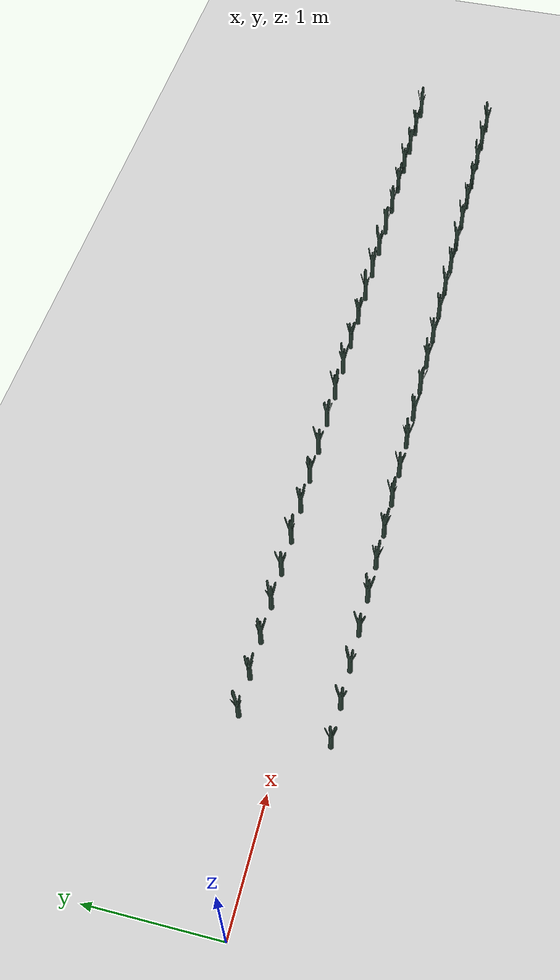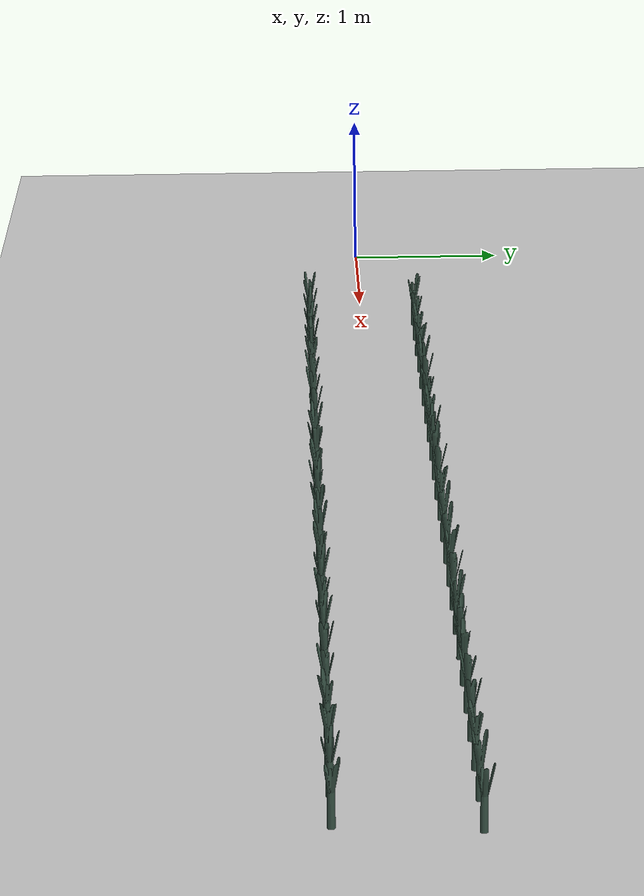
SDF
<sdf version="1.6">
 <world name="default">
  <light name="sun" type="directional">
   <pose>0 0 10 0 -0 0</pose>
   <diffuse>0.5 0.5 0.5 1</diffuse>
   <specular>0.1 0.1 0.1 1</specular>
   <attenuation>
    <range>1000</range>
    <constant>0.9</constant>
    <linear>0.01</linear>
    <quadratic>0.001</quadratic>
   </attenuation>
   <direction>0.9 0.5 -1</direction>
  </light>
  <scene><background>130 200 255 1</background><ambient>130 140 140 1</ambient></scene>
  <include><uri>model://dirt_plane</uri></include>
  <include><uri>model://Leek</uri><pose>1.500000 0.350000 0.15 0 0 95.215852</pose><static>0</static></include>
  <include>
   <uri>model://Leek</uri>
   <pose>1.800000 0.350000 0.15 0 0 -115.288577</pose>
   <static>0</static>
  </include>
  <include><uri>model://Leek</uri><pose>2.100000 0.350000 0.15 0 0 91.689191</pose><static>0</static></include>
  <include><uri>model://Leek</uri><pose>2.400000 0.350000 0.15 0 0 55.700341</pose><static>0</static></include>
  <include>
   <uri>model://Leek</uri>
   <pose>2.700000 0.350000 0.15 0 0 -148.914233</pose>
   <static>0</static>
  </include>
  <include><uri>model://Leek</uri><pose>3.000000 0.350000 0.15 0 0 6.157459</pose><static>0</static></include>
  <include><uri>model://Leek</uri><pose>3.300000 0.350000 0.15 0 0 54.346824</pose><static>0</static></include>
  <include>
   <uri>model://Leek</uri>
   <pose>3.600000 0.350000 0.15 0 0 -134.548834</pose>
   <static>0</static>
  </include>
  <include><uri>model://Leek</uri><pose>3.900000 0.350000 0.15 0 0 39.245006</pose><static>0</static></include>
  <include>
   <uri>model://Leek</uri>
   <pose>4.200000 0.350000 0.15 0 0 -141.790006</pose>
   <static>0</static>
  </include>
  <include><uri>model://Leek</uri><pose>4.500000 0.350000 0.15 0 0 75.186064</pose><static>0</static></include>
  <include><uri>model://Leek</uri><pose>4.800000 0.350000 0.15 0 0 -70.070408</pose><static>0</static></include>
  <include><uri>model://Leek</uri><pose>5.100000 0.350000 0.15 0 0 -47.884441</pose><static>0</static></include>
  <include>
   <uri>model://Leek</uri>
   <pose>5.400000 0.350000 0.15 0 0 -160.862297</pose>
   <static>0</static>
  </include>
  <include>
   <uri>model://Leek</uri>
   <pose>5.700000 0.350000 0.15 0 0 -118.964929</pose>
   <static>0</static>
  </include>
  <include><uri>model://Leek</uri><pose>6.000000 0.350000 0.15 0 0 -19.193495</pose><static>0</static></include>
  <include><uri>model://Leek</uri><pose>6.300000 0.350000 0.15 0 0 126.627101</pose><static>0</static></include>
  <include>
   <uri>model://Leek</uri>
   <pose>6.600000 0.350000 0.15 0 0 -179.285908</pose>
   <static>0</static>
  </include>
  <include>
   <uri>model://Leek</uri>
   <pose>6.900000 0.350000 0.15 0 0 -160.136074</pose>
   <static>0</static>
  </include>
  <include><uri>model://Leek</uri><pose>7.200000 0.350000 0.15 0 0 -77.289021</pose><static>0</static></include>
  <include>
   <uri>model://Leek</uri>
   <pose>7.500000 0.350000 0.15 0 0 -132.486833</pose>
   <static>0</static>
  </include>
  <include><uri>model://Leek</uri><pose>7.800000 0.350000 0.15 0 0 -71.588662</pose><static>0</static></include>
  <include><uri>model://Leek</uri><pose>8.100000 0.350000 0.15 0 0 96.587926</pose><static>0</static></include>
  <include><uri>model://Leek</uri><pose>8.400000 0.350000 0.15 0 0 31.519184</pose><static>0</static></include>
  <include><uri>model://Leek</uri><pose>1.432088 -0.350000 0.15 0 0 52.347864</pose><static>0</static></include>
  <include>
   <uri>model://Leek</uri>
   <pose>1.732088 -0.350000 0.15 0 0 -74.002181</pose>
   <static>0</static>
  </include>
  <include><uri>model://Leek</uri><pose>2.032088 -0.350000 0.15 0 0 26.312208</pose><static>0</static></include>
  <include><uri>model://Leek</uri><pose>2.332088 -0.350000 0.15 0 0 89.510186</pose><static>0</static></include>
  <include>
   <uri>model://Leek</uri>
   <pose>2.632088 -0.350000 0.15 0 0 -63.838010</pose>
   <static>0</static>
  </include>
  <include><uri>model://Leek</uri><pose>2.932088 -0.350000 0.15 0 0 73.516065</pose><static>0</static></include>
  <include>
   <uri>model://Leek</uri>
   <pose>3.232088 -0.350000 0.15 0 0 161.338471</pose>
   <static>0</static>
  </include>
  <include><uri>model://Leek</uri><pose>3.532088 -0.350000 0.15 0 0 6.141946</pose><static>0</static></include>
  <include><uri>model://Leek</uri><pose>3.832088 -0.350000 0.15 0 0 70.986717</pose><static>0</static></include>
  <include>
   <uri>model://Leek</uri>
   <pose>4.132088 -0.350000 0.15 0 0 -83.010617</pose>
   <static>0</static>
  </include>
  <include>
   <uri>model://Leek</uri>
   <pose>4.432088 -0.350000 0.15 0 0 154.647775</pose>
   <static>0</static>
  </include>
  <include><uri>model://Leek</uri><pose>4.732088 -0.350000 0.15 0 0 59.358933</pose><static>0</static></include>
  <include>
   <uri>model://Leek</uri>
   <pose>5.032088 -0.350000 0.15 0 0 -170.783293</pose>
   <static>0</static>
  </include>
  <include>
   <uri>model://Leek</uri>
   <pose>5.332088 -0.350000 0.15 0 0 -54.505394</pose>
   <static>0</static>
  </include>
  <include><uri>model://Leek</uri><pose>5.632088 -0.350000 0.15 0 0 66.771997</pose><static>0</static></include>
  <include><uri>model://Leek</uri><pose>5.932088 -0.350000 0.15 0 0 32.587818</pose><static>0</static></include>
  <include>
   <uri>model://Leek</uri>
   <pose>6.232088 -0.350000 0.15 0 0 -127.786396</pose>
   <static>0</static>
  </include>
  <include>
   <uri>model://Leek</uri>
   <pose>6.532088 -0.350000 0.15 0 0 -42.799415</pose>
   <static>0</static>
  </include>
  <include><uri>model://Leek</uri><pose>6.832088 -0.350000 0.15 0 0 30.941118</pose><static>0</static></include>
  <include>
   <uri>model://Leek</uri>
   <pose>7.132088 -0.350000 0.15 0 0 -102.517035</pose>
   <static>0</static>
  </include>
  <include>
   <uri>model://Leek</uri>
   <pose>7.432088 -0.350000 0.15 0 0 -96.906640</pose>
   <static>0</static>
  </include>
  <include><uri>model://Leek</uri><pose>7.732088 -0.350000 0.15 0 0 43.118149</pose><static>0</static></include>
  <include><uri>model://Leek</uri><pose>8.032088 -0.350000 0.15 0 0 57.847972</pose><static>0</static></include>
  <include>
   <uri>model://Leek</uri>
   <pose>8.332088 -0.350000 0.15 0 0 -87.388067</pose>
   <static>0</static>
  </include>
 </world>
</sdf>

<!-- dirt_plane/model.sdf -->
<sdf version="1.4">
<model name="dirt_plane">
  <static>true</static>
    <link name="link">
      <collision name="collision">
        <geometry>
          <plane>
            <normal>0 0 1</normal>
            <size>100 100</size>
          </plane>
        </geometry>
        <surface>
          <friction>
            <ode>
              <mu>0.99</mu>
              <mu2>0.99</mu2>
            </ode>
          </friction>
        </surface>
      </collision>
      <visual name="visual">
        <cast_shadows>false</cast_shadows>
        <geometry>
          <plane>
            <normal>0 0 1</normal>
            <size>100 100</size>
          </plane>
        </geometry>
        <material>
          <script>
            <uri>model://ground_plane/materials/scripts/my_ground_plane.material</uri>
            <uri>model://ground_plane/materials/textures</uri>
            <name>my_ground_plane/Dirt</name>
          </script>
        </material>
      </visual>
    </link>
  </model>
</sdf>

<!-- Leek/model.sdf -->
<sdf version='1.6'>
  <model name='Leek'>
    <link name='link'>
      <pose frame=''>0 0 0 0 -0 0</pose>
      <inertial>
        <mass>1</mass>
        <inertia>
          <ixx>0.145833</ixx>
          <ixy>0</ixy>
          <ixz>0</ixz>
          <iyy>0.145833</iyy>
          <iyz>0</iyz>
          <izz>0.125</izz>
        </inertia>
        <pose frame=''>0 0 0 0 -0 0</pose>
      </inertial>
      <self_collide>0</self_collide>
      <kinematic>0</kinematic>
      <gravity>1</gravity>
      <visual name='visual'>
        <geometry>
          <mesh>
            <uri>model://Leek/Poireau.dae</uri>
            <scale>1 1 1</scale>
          </mesh>
        </geometry>
        <material>
          <script>
            <name>Gazebo/Grey</name>
            <uri>file://media/materials/scripts/gazebo.material</uri>
          </script>
          <ambient>0.3 0.6 0.5 0</ambient>
          <diffuse>0.2 0.3 0.25 0</diffuse>
          <specular>0 0 0 1</specular>
          <emissive>0 0 0 1</emissive>
          <shader type='vertex'>
            <normal_map>__default__</normal_map>
          </shader>
        </material>
        <pose frame=''>0 0 -0.08 0 -0 0</pose>
        <cast_shadows>1</cast_shadows>
        <transparency>0</transparency>
      </visual>
      <collision name='collision'>
        <laser_retro>0</laser_retro>
        <max_contacts>10</max_contacts>
        <pose frame=''>0 0 0 0 -0 0</pose>
        <geometry>
          <cylinder>
            <radius>0.02</radius>
            <length>0.25</length>
          </cylinder>
        </geometry>
        <surface>
          <friction>
            <ode>
              <mu>1</mu>
              <mu2>1</mu2>
              <fdir1>0 0 0</fdir1>
              <slip1>0</slip1>
              <slip2>0</slip2>
            </ode>
            <torsional>
              <coefficient>1</coefficient>
              <patch_radius>0</patch_radius>
              <surface_radius>0</surface_radius>
              <use_patch_radius>1</use_patch_radius>
              <ode>
                <slip>0</slip>
              </ode>
            </torsional>
          </friction>
          <bounce>
            <restitution_coefficient>0</restitution_coefficient>
            <threshold>1e+06</threshold>
          </bounce>
          <contact>
            <collide_without_contact>0</collide_without_contact>
            <collide_without_contact_bitmask>1</collide_without_contact_bitmask>
            <collide_bitmask>1</collide_bitmask>
            <ode>
              <soft_cfm>0</soft_cfm>
              <soft_erp>0.2</soft_erp>
              <kp>1e+13</kp>
              <kd>1</kd>
              <max_vel>0.01</max_vel>
              <min_depth>0</min_depth>
            </ode>
            <bullet>
              <split_impulse>1</split_impulse>
              <split_impulse_penetration_threshold>-0.01</split_impulse_penetration_threshold>
              <soft_cfm>0</soft_cfm>
              <soft_erp>0.2</soft_erp>
              <kp>1e+13</kp>
              <kd>1</kd>
            </bullet>
          </contact>
        </surface>
      </collision>
    </link>
    <static>0</static>
    <allow_auto_disable>1</allow_auto_disable>
  </model>
</sdf>
